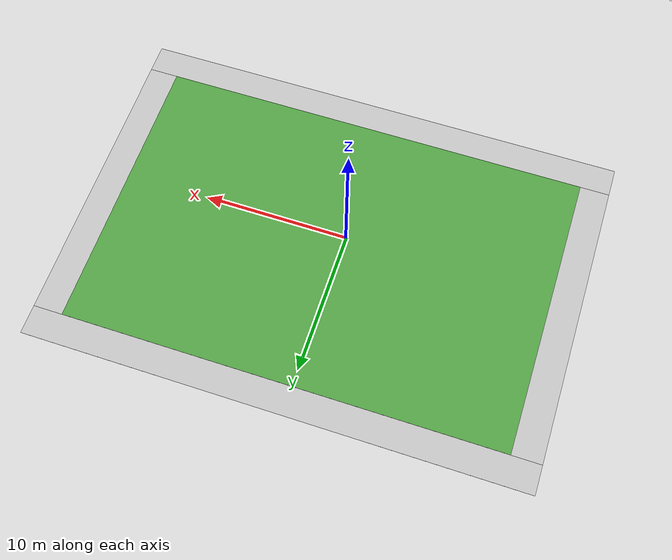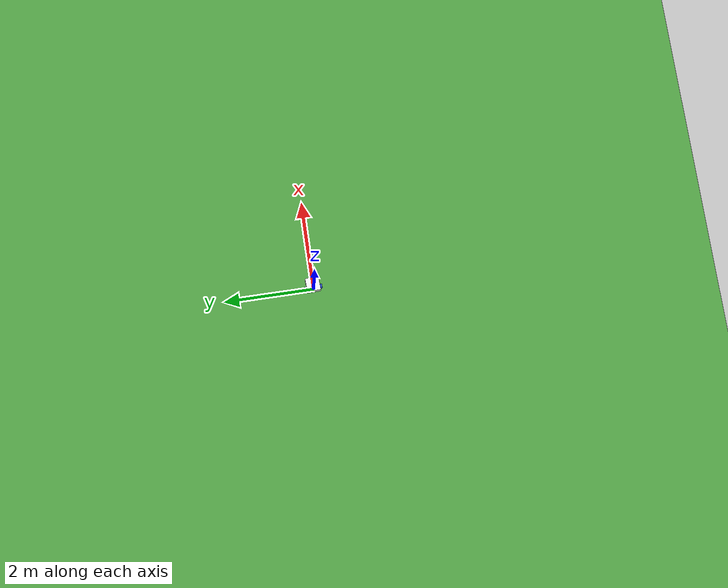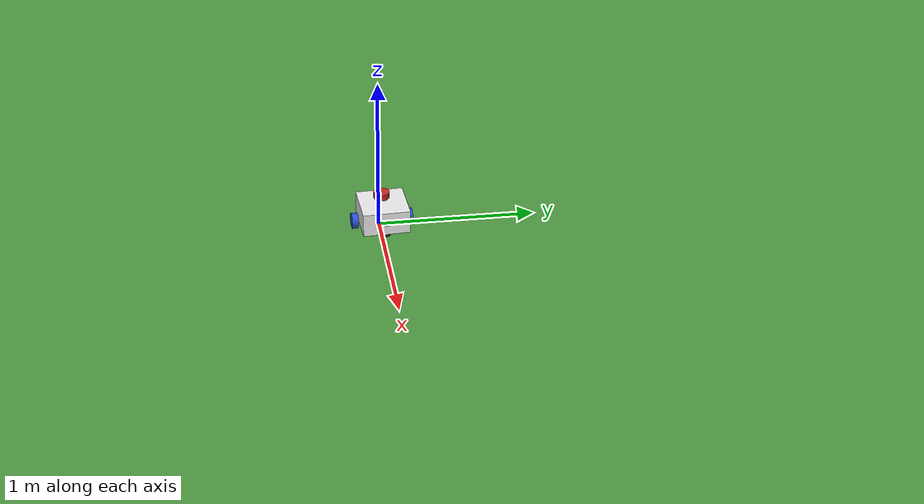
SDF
<sdf version="1.7">
 <world name="default">
  <light name="sun" type="directional">
   <pose>0 0 10 0 -0 0</pose>
   <diffuse>0.8 0.8 0.8 1</diffuse>
   <specular>0.2 0.2 0.2 1</specular>
   <attenuation>
    <range>1000</range>
    <constant>0.9</constant>
    <linear>0.01</linear>
    <quadratic>0.001</quadratic>
   </attenuation>
   <direction>-0.5 0.1 -0.9</direction>
   <spot><inner_angle>0</inner_angle><outer_angle>0</outer_angle><falloff>0</falloff></spot>
  </light>
  <model name="ground_plane">
   <static>1</static>
   <link name="link">
    <collision name="collision">
     <geometry><plane><normal>0 0 1</normal><size>100 100</size></plane></geometry>
     <surface><friction><ode><mu>100</mu><mu2>50</mu2></ode></friction></surface>
    </collision>
    <visual name="visual">
     <cast_shadows>0</cast_shadows>
     <geometry><plane><normal>0 0 1</normal><size>100 100</size></plane></geometry>
     <material>
      <script><uri>file://media/materials/scripts/gazebo.material</uri><name>Gazebo/Grey</name></script>
     </material>
    </visual>
   </link>
  </model>
  <gravity>0 0 -9.8</gravity>
  <magnetic_field>6e-06 2.3e-05 -4.2e-05</magnetic_field>
  <atmosphere type="adiabatic"/>
  <physics type="ode">
   <max_step_size>0.001</max_step_size>
   <real_time_factor>1</real_time_factor>
   <real_time_update_rate>1000</real_time_update_rate>
  </physics>
  <scene><ambient>0.4 0.4 0.4 1</ambient><background>0.7 0.7 0.7 1</background><shadows>1</shadows></scene>
  <audio><device>default</device></audio>
  <spherical_coordinates>
   <surface_model>EARTH_WGS84</surface_model>
   <latitude_deg>0</latitude_deg>
   <longitude_deg>0</longitude_deg>
   <elevation>0</elevation>
   <heading_deg>0</heading_deg>
  </spherical_coordinates>
  <model name="my_bot">
   <link name="base_link">
    <inertial>
     <pose>0.055714 0 0.078571 0 -0 0</pose>
     <mass>0.7</mass>
     <inertia>
      <ixx>0.0064169</ixx>
      <ixy>0</ixy>
      <ixz>0.00118929</ixz>
      <iyy>0.00745405</iyy>
      <iyz>0</iyz>
      <izz>0.00876214</izz>
     </inertia>
    </inertial>
    <collision name="base_link_fixed_joint_lump__chassis_collision">
     <pose>0.05 0 0.075 0 -0 0</pose>
     <geometry><box><size>0.3 0.3 0.15</size></box></geometry>
    </collision>
    <collision name="base_link_fixed_joint_lump__caster_wheel_collision_1">
     <pose>0.14 0 0 0 -0 0</pose>
     <geometry><sphere><radius>0.05</radius></sphere></geometry>
     <surface><friction><ode><mu>0.001</mu><mu2>0.001</mu2></ode></friction></surface>
    </collision>
    <collision name="base_link_fixed_joint_lump__laser_frame_collision_2">
     <pose>0 0 0.175 0 -0 0</pose>
     <geometry><cylinder><length>0.04</length><radius>0.05</radius></cylinder></geometry>
    </collision>
    <visual name="base_link_fixed_joint_lump__chassis_visual">
     <pose>0.05 0 0.075 0 -0 0</pose>
     <geometry><box><size>0.3 0.3 0.15</size></box></geometry>
     <material>
      <script><name>Gazebo/White</name><uri>file://media/materials/scripts/gazebo.material</uri></script>
     </material>
    </visual>
    <visual name="base_link_fixed_joint_lump__camera_link_visual_1">
     <pose>0.205 0 0.08 0 -0 0</pose>
     <geometry><box><size>0.01 0.03 0.03</size></box></geometry>
     <material>
      <script><name>Gazebo/Red</name><uri>file://media/materials/scripts/gazebo.material</uri></script>
     </material>
    </visual>
    <visual name="base_link_fixed_joint_lump__caster_wheel_visual_2">
     <pose>0.14 0 0 0 -0 0</pose>
     <geometry><sphere><radius>0.05</radius></sphere></geometry>
     <material>
      <script><name>Gazebo/Black</name><uri>file://media/materials/scripts/gazebo.material</uri></script>
     </material>
    </visual>
    <visual name="base_link_fixed_joint_lump__laser_frame_visual_3">
     <pose>0 0 0.175 0 -0 0</pose>
     <geometry><cylinder><length>0.04</length><radius>0.05</radius></cylinder></geometry>
     <material>
      <script><name>Gazebo/Red</name><uri>file://media/materials/scripts/gazebo.material</uri></script>
     </material>
    </visual>
    <sensor name="camera" type="camera">
     <visualize>1</visualize>
     <update_rate>10</update_rate>
     <camera>
      <horizontal_fov>1.089</horizontal_fov>
      <image><format>R8G8B8</format><width>640</width><height>480</height></image>
      <clip><near>0.05</near><far>8</far></clip>
     </camera>
     <plugin name="camera_controller" filename="libgazebo_ros_camera.so">
      <frame_name>camera_link_optical</frame_name>
     </plugin>
     <pose>0.205 0 0.08 0 -0 0</pose>
    </sensor>
    <sensor name="laser" type="ray">
     <visualize>0</visualize>
     <update_rate>10</update_rate>
     <ray>
      <scan>
       <horizontal>
        <samples>360</samples>
        <min_angle>-3.14</min_angle>
        <max_angle>3.14</max_angle>
        <resolution>1</resolution>
       </horizontal>
       <vertical><samples>1</samples><min_angle>0</min_angle><max_angle>0</max_angle></vertical>
      </scan>
      <range><min>0.3</min><max>12</max></range>
     </ray>
     <plugin name="laser_controller" filename="libgazebo_ros_ray_sensor.so">
      <ros><argument>~/out:=scan</argument></ros>
      <output_type>sensor_msgs/LaserScan</output_type>
      <frame_name>laser_frame</frame_name>
     </plugin>
     <pose>0 0 0.175 0 -0 0</pose>
    </sensor>
   </link>
   <joint name="left_wheel_joint" type="revolute">
    <pose relative_to="base_link">0 0.175 0 -1.5708 0 0</pose>
    <parent>base_link</parent>
    <child>left_wheel</child>
    <axis>
     <xyz>0 0 1</xyz>
     <limit><lower>-1e+16</lower><upper>1e+16</upper></limit>
     <dynamics><spring_reference>0</spring_reference><spring_stiffness>0</spring_stiffness></dynamics>
    </axis>
   </joint>
   <link name="left_wheel">
    <pose relative_to="left_wheel_joint">0 0 0 0 -0 0</pose>
    <inertial>
     <mass>0.1</mass>
     <inertia>
      <ixx>7.58333e-05</ixx>
      <ixy>0</ixy>
      <ixz>0</ixz>
      <iyy>7.58333e-05</iyy>
      <iyz>0</iyz>
      <izz>0.000125</izz>
     </inertia>
    </inertial>
    <collision name="left_wheel_collision">
     <geometry><cylinder><length>0.04</length><radius>0.05</radius></cylinder></geometry>
    </collision>
    <visual name="left_wheel_visual">
     <geometry><cylinder><length>0.04</length><radius>0.05</radius></cylinder></geometry>
     <material>
      <script><name>Gazebo/Blue</name><uri>file://media/materials/scripts/gazebo.material</uri></script>
     </material>
    </visual>
   </link>
   <joint name="right_wheel_joint" type="revolute">
    <pose relative_to="base_link">0 -0.175 0 1.5708 -0 0</pose>
    <parent>base_link</parent>
    <child>right_wheel</child>
    <axis>
     <xyz>0 0 -1</xyz>
     <limit><lower>-1e+16</lower><upper>1e+16</upper></limit>
     <dynamics><spring_reference>0</spring_reference><spring_stiffness>0</spring_stiffness></dynamics>
    </axis>
   </joint>
   <link name="right_wheel">
    <pose relative_to="right_wheel_joint">0 0 0 0 -0 0</pose>
    <inertial>
     <mass>0.1</mass>
     <inertia>
      <ixx>7.58333e-05</ixx>
      <ixy>0</ixy>
      <ixz>0</ixz>
      <iyy>7.58333e-05</iyy>
      <iyz>0</iyz>
      <izz>0.000125</izz>
     </inertia>
    </inertial>
    <collision name="right_wheel_collision">
     <geometry><cylinder><length>0.04</length><radius>0.05</radius></cylinder></geometry>
    </collision>
    <visual name="right_wheel_visual">
     <geometry><cylinder><length>0.04</length><radius>0.05</radius></cylinder></geometry>
     <material>
      <script><name>Gazebo/Blue</name><uri>file://media/materials/scripts/gazebo.material</uri></script>
     </material>
    </visual>
   </link>
   <static>0</static>
   <plugin name="diff_drive" filename="libgazebo_ros_diff_drive.so">
    <left_joint>left_wheel_joint</left_joint>
    <right_joint>right_wheel_joint</right_joint>
    <wheel_separation>0.35</wheel_separation>
    <wheel_diameter>0.1</wheel_diameter>
    <max_wheel_torque>200</max_wheel_torque>
    <max_wheel_acceleration>10.0</max_wheel_acceleration>
    <odometry_frame>odom</odometry_frame>
    <robot_base_frame>base_link</robot_base_frame>
    <publish_odom>1</publish_odom>
    <publish_odom_tf>1</publish_odom_tf>
    <publish_wheel_tf>1</publish_wheel_tf>
   </plugin>
   <pose>0.034922 0.013022 0.059995 -2.8e-05 -4e-06 0.049185</pose>
  </model>
  <model name="robocup_3d_field">
   <static>1</static>
   <link name="field">
    <pose>0 0 0.01 0 -0 0</pose>
    <collision name="collision">
     <geometry><plane><normal>0 0 1</normal><size>30 20</size></plane></geometry>
     <surface><friction><ode><mu>100</mu><mu2>50</mu2></ode></friction></surface>
    </collision>
    <visual name="base1">
     <pose>0 11 0.001 0 -0 0</pose>
     <cast_shadows>0</cast_shadows>
     <geometry><plane><normal>0 0 1</normal><size>34 2</size></plane></geometry>
     <material>
      <script>
       <uri>model://robocup_3Dsim_field/materials/scripts/</uri>
       <uri>model://robocup_3Dsim_field/materials/textures/</uri>
       <name>RoboCup/FieldBorder</name>
      </script>
     </material>
    </visual>
    <visual name="base2">
     <pose>0 -11 0.001 0 -0 0</pose>
     <cast_shadows>0</cast_shadows>
     <geometry><plane><normal>0 0 1</normal><size>34 2</size></plane></geometry>
     <material>
      <script>
       <uri>model://robocup_3Dsim_field/materials/scripts/</uri>
       <uri>model://robocup_3Dsim_field/materials/textures/</uri>
       <name>RoboCup/FieldBorder</name>
      </script>
     </material>
    </visual>
    <visual name="base3">
     <pose>16 0 0.001 0 -0 0</pose>
     <cast_shadows>0</cast_shadows>
     <geometry><plane><normal>0 0 1</normal><size>2 20</size></plane></geometry>
     <material>
      <script>
       <uri>model://robocup_3Dsim_field/materials/scripts/</uri>
       <uri>model://robocup_3Dsim_field/materials/textures/</uri>
       <name>RoboCup/FieldBorder</name>
      </script>
     </material>
    </visual>
    <visual name="base4">
     <pose>-16 0 0.001 0 -0 0</pose>
     <cast_shadows>0</cast_shadows>
     <geometry><plane><normal>0 0 1</normal><size>2 20</size></plane></geometry>
     <material>
      <script>
       <uri>model://robocup_3Dsim_field/materials/scripts/</uri>
       <uri>model://robocup_3Dsim_field/materials/textures/</uri>
       <name>RoboCup/FieldBorder</name>
      </script>
     </material>
    </visual>
    <visual name="carpet">
     <cast_shadows>0</cast_shadows>
     <geometry><plane><normal>0 0 1</normal><size>30 20</size></plane></geometry>
     <material>
      <script>
       <uri>model://robocup_3Dsim_field/materials/scripts/</uri>
       <uri>model://robocup_3Dsim_field/materials/textures/</uri>
       <name>RoboCup/Grass</name>
      </script>
     </material>
    </visual>
   </link>
   <pose>0.840653 1.15027 0 0 -0 0</pose>
  </model>
 </world>
</sdf>
